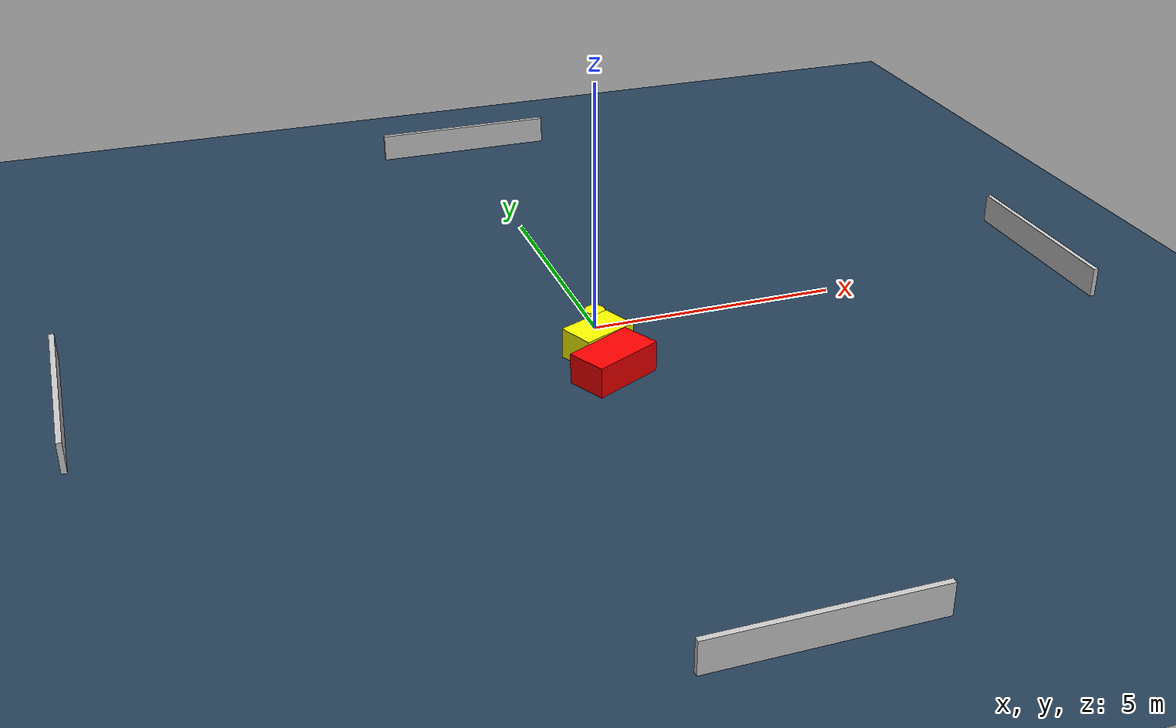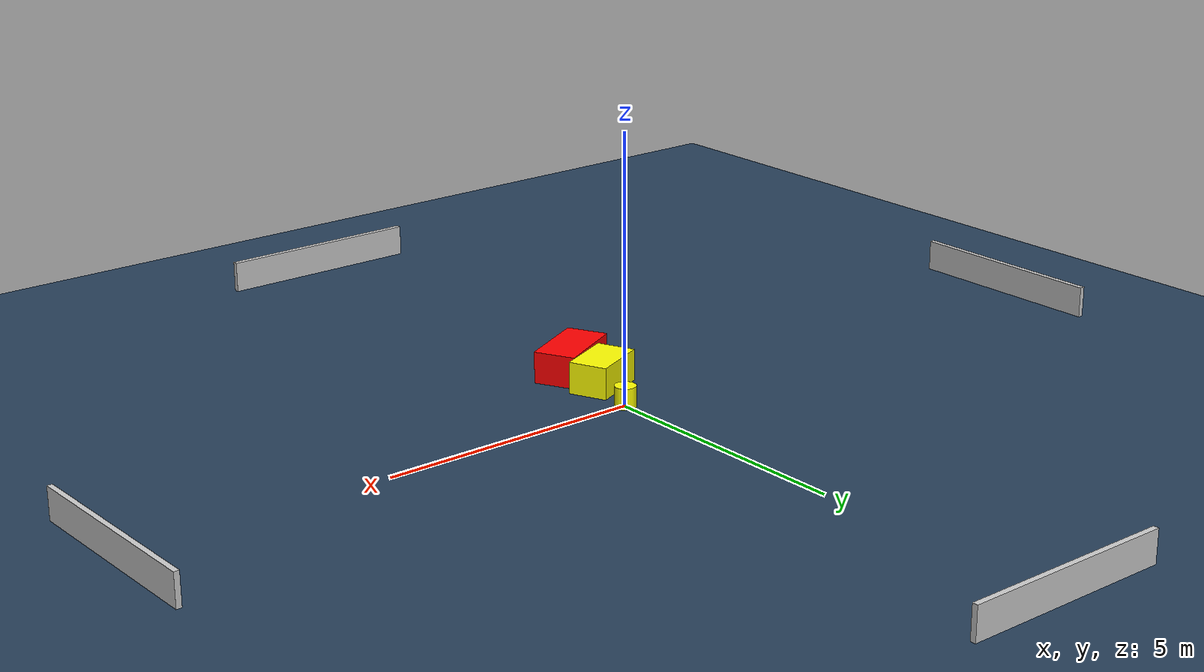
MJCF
<?xml version="1.0" ?>
<mujoco model="generated_environment">
  <option timestep="0.01" integrator="RK4" cone="elliptic"/>
  <default>
    <geom density="1"/>
  </default>
  <asset>
    <texture builtin="gradient" height="3072" name="skybox" rgb1="0.3 0.5 0.7" rgb2="0 0 0" type="skybox" width="512"/>
    <texture builtin="checker" height="300" name="groundplane" rgb1="0.2 0.3 0.4" rgb2="0.1 0.2 0.3" type="2d" width="300"/>
    <material name="groundplane" reflectance="0.2" texrepeat="5 5" texture="groundplane"/>
  </asset>
  <worldbody>
    <light dir="0 0 -1" directional="true" pos="0 0 1.5"/>
    <geom condim="3" friction="0.5 0.005 0.001" material="groundplane" name="floor" pos="0 0 0" size="0 0 0.05" type="plane"/>
    <body name="walls">
      <geom name="wall_1" condim="4" pos="-10.0 0.0 0.3" rgba="0.800000011920929 0.800000011920929 0.800000011920929 1.0" size="0.05 2.0 0.3" type="box"/>
      <geom name="wall_2" condim="4" pos="10.0 0.0 0.3" rgba="0.800000011920929 0.800000011920929 0.800000011920929 1.0" size="0.05 2.0 0.3" type="box"/>
      <geom name="wall_3" condim="4" pos="0.0 -10.0 0.3" rgba="0.800000011920929 0.800000011920929 0.800000011920929 1.0" size="2.0 0.05 0.3" type="box"/>
      <geom name="wall_4" condim="4" pos="0.0 10.0 0.3" rgba="0.800000011920929 0.800000011920929 0.800000011920929 1.0" size="2.0 0.05 0.3" type="box"/>
    </body>
    <body name="robot">
      <joint name="joint_x" type="slide" pos="0 0 0" axis="1 0 0"/>
      <joint name="joint_y" type="slide" pos="0 0 0" axis="0 1 0"/>
      <geom name="robot" type="cylinder" pos="0.0 0.0 0.2" size="0.2 0.2 0.0" mass="5.0" friction="1.0 0.005 0.0001" condim="4" rgba="1.0 1.0 0.0 1.0"/>
    </body>
    <body name="obstacle_1_movable">
      <geom name="obstacle_1_movable" condim="4" pos="-0.29760596414797724 -1.0182350606928459 0.3" euler="0 0 203.54678702377896" friction="0.0 0.005 0.001" rgba="1.0 1.0 0.0 1.0" size="0.5659296335712984 0.3692691039108943 0.3" type="box" mass="0.1"/>
      <joint type="free"/>
    </body>
    <body name="obstacle_2_static">
      <geom name="obstacle_2_static" condim="4" pos="-0.29822059669913786 -1.9174613406449728 0.3" euler="0 0 296.5920175065128" friction="0.0 0.005 0.001" rgba="1.0 0.0 0.0 1.0" size="0.39939862393789904 0.7219170088463205 0.3" type="box"/>
    </body>
  </worldbody>
  <actuator>
    <motor name="actuator_x" joint="joint_x" gear="1" ctrlrange="-1 1"/>
    <motor name="actuator_y" joint="joint_y" gear="1" ctrlrange="-1 1"/>
  </actuator>
</mujoco>
